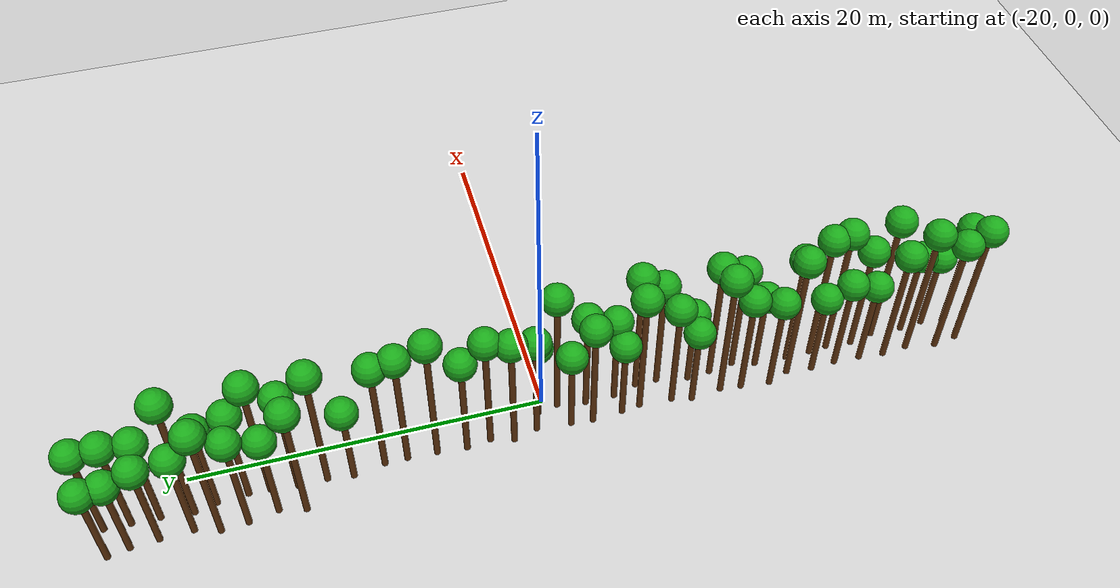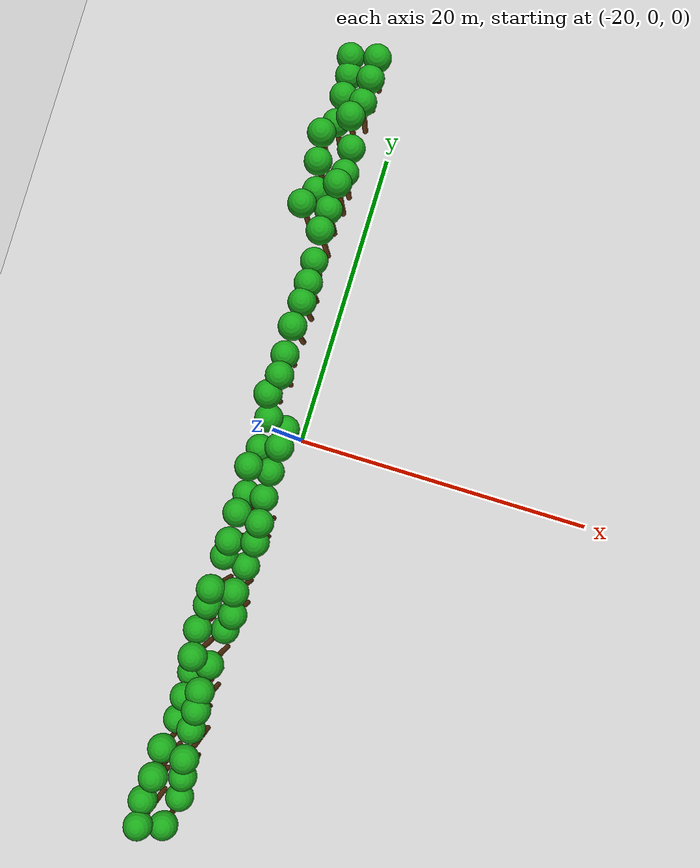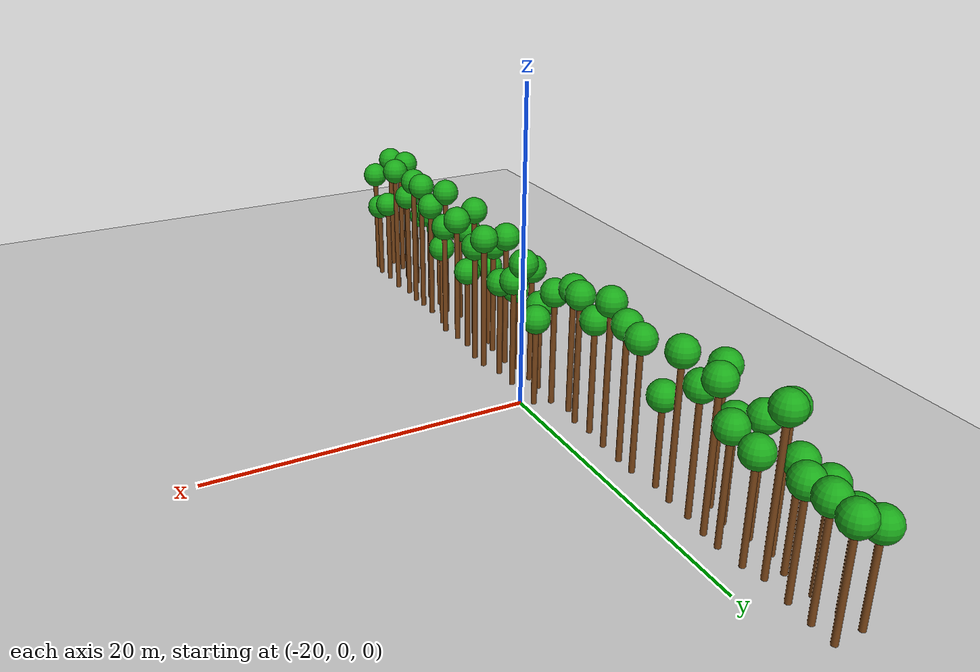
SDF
<sdf version="1.6">
 <world name="forest_world">
  <include><uri>model://sun</uri></include>
  <include><uri>model://ground_plane</uri></include>
  <model name="tree_60">
   <static>true</static>
   <link name="trunk">
    <collision name="collision">
     <pose>-23.60 13.97 3.97 0 0 0</pose>
     <geometry><cylinder><radius>0.18</radius><length>7.95</length></cylinder></geometry>
    </collision>
    <visual name="trunk_visual">
     <pose>-23.60 13.97 3.97 0 0 0</pose>
     <geometry><cylinder><radius>0.18</radius><length>7.95</length></cylinder></geometry>
     <material><ambient>0.35 0.20 0.05 1</ambient><diffuse>0.45 0.25 0.08 1</diffuse></material>
    </visual>
    <visual name="leaf_visual">
     <pose>-23.60 13.97 8.40 0 0 0</pose>
     <geometry><sphere><radius>0.9</radius></sphere></geometry>
     <material><ambient>0.05 0.45 0.05 1</ambient><diffuse>0.10 0.65 0.10 1</diffuse></material>
    </visual>
   </link>
  </model>
  <model name="tree_61">
   <static>true</static>
   <link name="trunk">
    <collision name="collision">
     <pose>-23.26 15.42 2.88 0 0 0</pose>
     <geometry><cylinder><radius>0.18</radius><length>5.77</length></cylinder></geometry>
    </collision>
    <visual name="trunk_visual">
     <pose>-23.26 15.42 2.88 0 0 0</pose>
     <geometry><cylinder><radius>0.18</radius><length>5.77</length></cylinder></geometry>
     <material><ambient>0.35 0.20 0.05 1</ambient><diffuse>0.45 0.25 0.08 1</diffuse></material>
    </visual>
    <visual name="leaf_visual">
     <pose>-23.26 15.42 6.22 0 0 0</pose>
     <geometry><sphere><radius>0.9</radius></sphere></geometry>
     <material><ambient>0.05 0.45 0.05 1</ambient><diffuse>0.10 0.65 0.10 1</diffuse></material>
    </visual>
   </link>
  </model>
  <model name="tree_62">
   <static>true</static>
   <link name="trunk">
    <collision name="collision">
     <pose>-23.58 17.05 3.33 0 0 0</pose>
     <geometry><cylinder><radius>0.18</radius><length>6.66</length></cylinder></geometry>
    </collision>
    <visual name="trunk_visual">
     <pose>-23.58 17.05 3.33 0 0 0</pose>
     <geometry><cylinder><radius>0.18</radius><length>6.66</length></cylinder></geometry>
     <material><ambient>0.35 0.20 0.05 1</ambient><diffuse>0.45 0.25 0.08 1</diffuse></material>
    </visual>
    <visual name="leaf_visual">
     <pose>-23.58 17.05 7.11 0 0 0</pose>
     <geometry><sphere><radius>0.9</radius></sphere></geometry>
     <material><ambient>0.05 0.45 0.05 1</ambient><diffuse>0.10 0.65 0.10 1</diffuse></material>
    </visual>
   </link>
  </model>
  <model name="tree_63">
   <static>true</static>
   <link name="trunk">
    <collision name="collision">
     <pose>-23.72 18.52 3.99 0 0 0</pose>
     <geometry><cylinder><radius>0.18</radius><length>7.97</length></cylinder></geometry>
    </collision>
    <visual name="trunk_visual">
     <pose>-23.72 18.52 3.99 0 0 0</pose>
     <geometry><cylinder><radius>0.18</radius><length>7.97</length></cylinder></geometry>
     <material><ambient>0.35 0.20 0.05 1</ambient><diffuse>0.45 0.25 0.08 1</diffuse></material>
    </visual>
    <visual name="leaf_visual">
     <pose>-23.72 18.52 8.42 0 0 0</pose>
     <geometry><sphere><radius>0.9</radius></sphere></geometry>
     <material><ambient>0.05 0.45 0.05 1</ambient><diffuse>0.10 0.65 0.10 1</diffuse></material>
    </visual>
   </link>
  </model>
  <model name="tree_64">
   <static>true</static>
   <link name="trunk">
    <collision name="collision">
     <pose>-23.30 19.89 2.96 0 0 0</pose>
     <geometry><cylinder><radius>0.18</radius><length>5.91</length></cylinder></geometry>
    </collision>
    <visual name="trunk_visual">
     <pose>-23.30 19.89 2.96 0 0 0</pose>
     <geometry><cylinder><radius>0.18</radius><length>5.91</length></cylinder></geometry>
     <material><ambient>0.35 0.20 0.05 1</ambient><diffuse>0.45 0.25 0.08 1</diffuse></material>
    </visual>
    <visual name="leaf_visual">
     <pose>-23.30 19.89 6.36 0 0 0</pose>
     <geometry><sphere><radius>0.9</radius></sphere></geometry>
     <material><ambient>0.05 0.45 0.05 1</ambient><diffuse>0.10 0.65 0.10 1</diffuse></material>
    </visual>
   </link>
  </model>
  <model name="tree_65">
   <static>true</static>
   <link name="trunk">
    <collision name="collision">
     <pose>-23.37 21.70 2.90 0 0 0</pose>
     <geometry><cylinder><radius>0.18</radius><length>5.79</length></cylinder></geometry>
    </collision>
    <visual name="trunk_visual">
     <pose>-23.37 21.70 2.90 0 0 0</pose>
     <geometry><cylinder><radius>0.18</radius><length>5.79</length></cylinder></geometry>
     <material><ambient>0.35 0.20 0.05 1</ambient><diffuse>0.45 0.25 0.08 1</diffuse></material>
    </visual>
    <visual name="leaf_visual">
     <pose>-23.37 21.70 6.24 0 0 0</pose>
     <geometry><sphere><radius>0.9</radius></sphere></geometry>
     <material><ambient>0.05 0.45 0.05 1</ambient><diffuse>0.10 0.65 0.10 1</diffuse></material>
    </visual>
   </link>
  </model>
  <model name="tree_66">
   <static>true</static>
   <link name="trunk">
    <collision name="collision">
     <pose>-23.48 23.23 2.60 0 0 0</pose>
     <geometry><cylinder><radius>0.18</radius><length>5.20</length></cylinder></geometry>
    </collision>
    <visual name="trunk_visual">
     <pose>-23.48 23.23 2.60 0 0 0</pose>
     <geometry><cylinder><radius>0.18</radius><length>5.20</length></cylinder></geometry>
     <material><ambient>0.35 0.20 0.05 1</ambient><diffuse>0.45 0.25 0.08 1</diffuse></material>
    </visual>
    <visual name="leaf_visual">
     <pose>-23.48 23.23 5.65 0 0 0</pose>
     <geometry><sphere><radius>0.9</radius></sphere></geometry>
     <material><ambient>0.05 0.45 0.05 1</ambient><diffuse>0.10 0.65 0.10 1</diffuse></material>
    </visual>
   </link>
  </model>
  <model name="tree_67">
   <static>true</static>
   <link name="trunk">
    <collision name="collision">
     <pose>-23.72 24.40 2.64 0 0 0</pose>
     <geometry><cylinder><radius>0.18</radius><length>5.28</length></cylinder></geometry>
    </collision>
    <visual name="trunk_visual">
     <pose>-23.72 24.40 2.64 0 0 0</pose>
     <geometry><cylinder><radius>0.18</radius><length>5.28</length></cylinder></geometry>
     <material><ambient>0.35 0.20 0.05 1</ambient><diffuse>0.45 0.25 0.08 1</diffuse></material>
    </visual>
    <visual name="leaf_visual">
     <pose>-23.72 24.40 5.73 0 0 0</pose>
     <geometry><sphere><radius>0.9</radius></sphere></geometry>
     <material><ambient>0.05 0.45 0.05 1</ambient><diffuse>0.10 0.65 0.10 1</diffuse></material>
    </visual>
   </link>
  </model>
  <model name="tree_68">
   <static>true</static>
   <link name="trunk">
    <collision name="collision">
     <pose>-21.97 -25.03 4.19 0 0 0</pose>
     <geometry><cylinder><radius>0.18</radius><length>8.38</length></cylinder></geometry>
    </collision>
    <visual name="trunk_visual">
     <pose>-21.97 -25.03 4.19 0 0 0</pose>
     <geometry><cylinder><radius>0.18</radius><length>8.38</length></cylinder></geometry>
     <material><ambient>0.35 0.20 0.05 1</ambient><diffuse>0.45 0.25 0.08 1</diffuse></material>
    </visual>
    <visual name="leaf_visual">
     <pose>-21.97 -25.03 8.83 0 0 0</pose>
     <geometry><sphere><radius>0.9</radius></sphere></geometry>
     <material><ambient>0.05 0.45 0.05 1</ambient><diffuse>0.10 0.65 0.10 1</diffuse></material>
    </visual>
   </link>
  </model>
  <model name="tree_69">
   <static>true</static>
   <link name="trunk">
    <collision name="collision">
     <pose>-22.20 -23.61 3.97 0 0 0</pose>
     <geometry><cylinder><radius>0.18</radius><length>7.94</length></cylinder></geometry>
    </collision>
    <visual name="trunk_visual">
     <pose>-22.20 -23.61 3.97 0 0 0</pose>
     <geometry><cylinder><radius>0.18</radius><length>7.94</length></cylinder></geometry>
     <material><ambient>0.35 0.20 0.05 1</ambient><diffuse>0.45 0.25 0.08 1</diffuse></material>
    </visual>
    <visual name="leaf_visual">
     <pose>-22.20 -23.61 8.39 0 0 0</pose>
     <geometry><sphere><radius>0.9</radius></sphere></geometry>
     <material><ambient>0.05 0.45 0.05 1</ambient><diffuse>0.10 0.65 0.10 1</diffuse></material>
    </visual>
   </link>
  </model>
  <model name="tree_70">
   <static>true</static>
   <link name="trunk">
    <collision name="collision">
     <pose>-21.89 -21.85 4.45 0 0 0</pose>
     <geometry><cylinder><radius>0.18</radius><length>8.90</length></cylinder></geometry>
    </collision>
    <visual name="trunk_visual">
     <pose>-21.89 -21.85 4.45 0 0 0</pose>
     <geometry><cylinder><radius>0.18</radius><length>8.90</length></cylinder></geometry>
     <material><ambient>0.35 0.20 0.05 1</ambient><diffuse>0.45 0.25 0.08 1</diffuse></material>
    </visual>
    <visual name="leaf_visual">
     <pose>-21.89 -21.85 9.35 0 0 0</pose>
     <geometry><sphere><radius>0.9</radius></sphere></geometry>
     <material><ambient>0.05 0.45 0.05 1</ambient><diffuse>0.10 0.65 0.10 1</diffuse></material>
    </visual>
   </link>
  </model>
  <model name="tree_71">
   <static>true</static>
   <link name="trunk">
    <collision name="collision">
     <pose>-22.01 -20.34 3.89 0 0 0</pose>
     <geometry><cylinder><radius>0.18</radius><length>7.78</length></cylinder></geometry>
    </collision>
    <visual name="trunk_visual">
     <pose>-22.01 -20.34 3.89 0 0 0</pose>
     <geometry><cylinder><radius>0.18</radius><length>7.78</length></cylinder></geometry>
     <material><ambient>0.35 0.20 0.05 1</ambient><diffuse>0.45 0.25 0.08 1</diffuse></material>
    </visual>
    <visual name="leaf_visual">
     <pose>-22.01 -20.34 8.23 0 0 0</pose>
     <geometry><sphere><radius>0.9</radius></sphere></geometry>
     <material><ambient>0.05 0.45 0.05 1</ambient><diffuse>0.10 0.65 0.10 1</diffuse></material>
    </visual>
   </link>
  </model>
  <model name="tree_72">
   <static>true</static>
   <link name="trunk">
    <collision name="collision">
     <pose>-21.87 -18.87 2.82 0 0 0</pose>
     <geometry><cylinder><radius>0.18</radius><length>5.64</length></cylinder></geometry>
    </collision>
    <visual name="trunk_visual">
     <pose>-21.87 -18.87 2.82 0 0 0</pose>
     <geometry><cylinder><radius>0.18</radius><length>5.64</length></cylinder></geometry>
     <material><ambient>0.35 0.20 0.05 1</ambient><diffuse>0.45 0.25 0.08 1</diffuse></material>
    </visual>
    <visual name="leaf_visual">
     <pose>-21.87 -18.87 6.09 0 0 0</pose>
     <geometry><sphere><radius>0.9</radius></sphere></geometry>
     <material><ambient>0.05 0.45 0.05 1</ambient><diffuse>0.10 0.65 0.10 1</diffuse></material>
    </visual>
   </link>
  </model>
  <model name="tree_73">
   <static>true</static>
   <link name="trunk">
    <collision name="collision">
     <pose>-21.82 -17.32 3.09 0 0 0</pose>
     <geometry><cylinder><radius>0.18</radius><length>6.18</length></cylinder></geometry>
    </collision>
    <visual name="trunk_visual">
     <pose>-21.82 -17.32 3.09 0 0 0</pose>
     <geometry><cylinder><radius>0.18</radius><length>6.18</length></cylinder></geometry>
     <material><ambient>0.35 0.20 0.05 1</ambient><diffuse>0.45 0.25 0.08 1</diffuse></material>
    </visual>
    <visual name="leaf_visual">
     <pose>-21.82 -17.32 6.63 0 0 0</pose>
     <geometry><sphere><radius>0.9</radius></sphere></geometry>
     <material><ambient>0.05 0.45 0.05 1</ambient><diffuse>0.10 0.65 0.10 1</diffuse></material>
    </visual>
   </link>
  </model>
  <model name="tree_74">
   <static>true</static>
   <link name="trunk">
    <collision name="collision">
     <pose>-21.90 -15.84 2.80 0 0 0</pose>
     <geometry><cylinder><radius>0.18</radius><length>5.59</length></cylinder></geometry>
    </collision>
    <visual name="trunk_visual">
     <pose>-21.90 -15.84 2.80 0 0 0</pose>
     <geometry><cylinder><radius>0.18</radius><length>5.59</length></cylinder></geometry>
     <material><ambient>0.35 0.20 0.05 1</ambient><diffuse>0.45 0.25 0.08 1</diffuse></material>
    </visual>
    <visual name="leaf_visual">
     <pose>-21.90 -15.84 6.04 0 0 0</pose>
     <geometry><sphere><radius>0.9</radius></sphere></geometry>
     <material><ambient>0.05 0.45 0.05 1</ambient><diffuse>0.10 0.65 0.10 1</diffuse></material>
    </visual>
   </link>
  </model>
  <model name="tree_75">
   <static>true</static>
   <link name="trunk">
    <collision name="collision">
     <pose>-21.75 -14.34 4.40 0 0 0</pose>
     <geometry><cylinder><radius>0.18</radius><length>8.80</length></cylinder></geometry>
    </collision>
    <visual name="trunk_visual">
     <pose>-21.75 -14.34 4.40 0 0 0</pose>
     <geometry><cylinder><radius>0.18</radius><length>8.80</length></cylinder></geometry>
     <material><ambient>0.35 0.20 0.05 1</ambient><diffuse>0.45 0.25 0.08 1</diffuse></material>
    </visual>
    <visual name="leaf_visual">
     <pose>-21.75 -14.34 9.25 0 0 0</pose>
     <geometry><sphere><radius>0.9</radius></sphere></geometry>
     <material><ambient>0.05 0.45 0.05 1</ambient><diffuse>0.10 0.65 0.10 1</diffuse></material>
    </visual>
   </link>
  </model>
  <model name="tree_76">
   <static>true</static>
   <link name="trunk">
    <collision name="collision">
     <pose>-22.23 -13.07 3.21 0 0 0</pose>
     <geometry><cylinder><radius>0.18</radius><length>6.41</length></cylinder></geometry>
    </collision>
    <visual name="trunk_visual">
     <pose>-22.23 -13.07 3.21 0 0 0</pose>
     <geometry><cylinder><radius>0.18</radius><length>6.41</length></cylinder></geometry>
     <material><ambient>0.35 0.20 0.05 1</ambient><diffuse>0.45 0.25 0.08 1</diffuse></material>
    </visual>
    <visual name="leaf_visual">
     <pose>-22.23 -13.07 6.86 0 0 0</pose>
     <geometry><sphere><radius>0.9</radius></sphere></geometry>
     <material><ambient>0.05 0.45 0.05 1</ambient><diffuse>0.10 0.65 0.10 1</diffuse></material>
    </visual>
   </link>
  </model>
  <model name="tree_77">
   <static>true</static>
   <link name="trunk">
    <collision name="collision">
     <pose>-22.03 -11.39 3.45 0 0 0</pose>
     <geometry><cylinder><radius>0.18</radius><length>6.89</length></cylinder></geometry>
    </collision>
    <visual name="trunk_visual">
     <pose>-22.03 -11.39 3.45 0 0 0</pose>
     <geometry><cylinder><radius>0.18</radius><length>6.89</length></cylinder></geometry>
     <material><ambient>0.35 0.20 0.05 1</ambient><diffuse>0.45 0.25 0.08 1</diffuse></material>
    </visual>
    <visual name="leaf_visual">
     <pose>-22.03 -11.39 7.34 0 0 0</pose>
     <geometry><sphere><radius>0.9</radius></sphere></geometry>
     <material><ambient>0.05 0.45 0.05 1</ambient><diffuse>0.10 0.65 0.10 1</diffuse></material>
    </visual>
   </link>
  </model>
  <model name="tree_78">
   <static>true</static>
   <link name="trunk">
    <collision name="collision">
     <pose>-21.91 -10.16 4.37 0 0 0</pose>
     <geometry><cylinder><radius>0.18</radius><length>8.73</length></cylinder></geometry>
    </collision>
    <visual name="trunk_visual">
     <pose>-21.91 -10.16 4.37 0 0 0</pose>
     <geometry><cylinder><radius>0.18</radius><length>8.73</length></cylinder></geometry>
     <material><ambient>0.35 0.20 0.05 1</ambient><diffuse>0.45 0.25 0.08 1</diffuse></material>
    </visual>
    <visual name="leaf_visual">
     <pose>-21.91 -10.16 9.18 0 0 0</pose>
     <geometry><sphere><radius>0.9</radius></sphere></geometry>
     <material><ambient>0.05 0.45 0.05 1</ambient><diffuse>0.10 0.65 0.10 1</diffuse></material>
    </visual>
   </link>
  </model>
  <model name="tree_79">
   <static>true</static>
   <link name="trunk">
    <collision name="collision">
     <pose>-22.11 -8.36 2.65 0 0 0</pose>
     <geometry><cylinder><radius>0.18</radius><length>5.31</length></cylinder></geometry>
    </collision>
    <visual name="trunk_visual">
     <pose>-22.11 -8.36 2.65 0 0 0</pose>
     <geometry><cylinder><radius>0.18</radius><length>5.31</length></cylinder></geometry>
     <material><ambient>0.35 0.20 0.05 1</ambient><diffuse>0.45 0.25 0.08 1</diffuse></material>
    </visual>
    <visual name="leaf_visual">
     <pose>-22.11 -8.36 5.76 0 0 0</pose>
     <geometry><sphere><radius>0.9</radius></sphere></geometry>
     <material><ambient>0.05 0.45 0.05 1</ambient><diffuse>0.10 0.65 0.10 1</diffuse></material>
    </visual>
   </link>
  </model>
  <model name="tree_80">
   <static>true</static>
   <link name="trunk">
    <collision name="collision">
     <pose>-21.85 -7.22 3.62 0 0 0</pose>
     <geometry><cylinder><radius>0.18</radius><length>7.23</length></cylinder></geometry>
    </collision>
    <visual name="trunk_visual">
     <pose>-21.85 -7.22 3.62 0 0 0</pose>
     <geometry><cylinder><radius>0.18</radius><length>7.23</length></cylinder></geometry>
     <material><ambient>0.35 0.20 0.05 1</ambient><diffuse>0.45 0.25 0.08 1</diffuse></material>
    </visual>
    <visual name="leaf_visual">
     <pose>-21.85 -7.22 7.68 0 0 0</pose>
     <geometry><sphere><radius>0.9</radius></sphere></geometry>
     <material><ambient>0.05 0.45 0.05 1</ambient><diffuse>0.10 0.65 0.10 1</diffuse></material>
    </visual>
   </link>
  </model>
  <model name="tree_81">
   <static>true</static>
   <link name="trunk">
    <collision name="collision">
     <pose>-21.76 -5.32 4.25 0 0 0</pose>
     <geometry><cylinder><radius>0.18</radius><length>8.49</length></cylinder></geometry>
    </collision>
    <visual name="trunk_visual">
     <pose>-21.76 -5.32 4.25 0 0 0</pose>
     <geometry><cylinder><radius>0.18</radius><length>8.49</length></cylinder></geometry>
     <material><ambient>0.35 0.20 0.05 1</ambient><diffuse>0.45 0.25 0.08 1</diffuse></material>
    </visual>
    <visual name="leaf_visual">
     <pose>-21.76 -5.32 8.94 0 0 0</pose>
     <geometry><sphere><radius>0.9</radius></sphere></geometry>
     <material><ambient>0.05 0.45 0.05 1</ambient><diffuse>0.10 0.65 0.10 1</diffuse></material>
    </visual>
   </link>
  </model>
  <model name="tree_82">
   <static>true</static>
   <link name="trunk">
    <collision name="collision">
     <pose>-21.91 -4.23 2.63 0 0 0</pose>
     <geometry><cylinder><radius>0.18</radius><length>5.27</length></cylinder></geometry>
    </collision>
    <visual name="trunk_visual">
     <pose>-21.91 -4.23 2.63 0 0 0</pose>
     <geometry><cylinder><radius>0.18</radius><length>5.27</length></cylinder></geometry>
     <material><ambient>0.35 0.20 0.05 1</ambient><diffuse>0.45 0.25 0.08 1</diffuse></material>
    </visual>
    <visual name="leaf_visual">
     <pose>-21.91 -4.23 5.72 0 0 0</pose>
     <geometry><sphere><radius>0.9</radius></sphere></geometry>
     <material><ambient>0.05 0.45 0.05 1</ambient><diffuse>0.10 0.65 0.10 1</diffuse></material>
    </visual>
   </link>
  </model>
  <model name="tree_83">
   <static>true</static>
   <link name="trunk">
    <collision name="collision">
     <pose>-22.05 -2.47 3.64 0 0 0</pose>
     <geometry><cylinder><radius>0.18</radius><length>7.29</length></cylinder></geometry>
    </collision>
    <visual name="trunk_visual">
     <pose>-22.05 -2.47 3.64 0 0 0</pose>
     <geometry><cylinder><radius>0.18</radius><length>7.29</length></cylinder></geometry>
     <material><ambient>0.35 0.20 0.05 1</ambient><diffuse>0.45 0.25 0.08 1</diffuse></material>
    </visual>
    <visual name="leaf_visual">
     <pose>-22.05 -2.47 7.74 0 0 0</pose>
     <geometry><sphere><radius>0.9</radius></sphere></geometry>
     <material><ambient>0.05 0.45 0.05 1</ambient><diffuse>0.10 0.65 0.10 1</diffuse></material>
    </visual>
   </link>
  </model>
  <model name="tree_84">
   <static>true</static>
   <link name="trunk">
    <collision name="collision">
     <pose>-21.94 -1.22 2.67 0 0 0</pose>
     <geometry><cylinder><radius>0.18</radius><length>5.34</length></cylinder></geometry>
    </collision>
    <visual name="trunk_visual">
     <pose>-21.94 -1.22 2.67 0 0 0</pose>
     <geometry><cylinder><radius>0.18</radius><length>5.34</length></cylinder></geometry>
     <material><ambient>0.35 0.20 0.05 1</ambient><diffuse>0.45 0.25 0.08 1</diffuse></material>
    </visual>
    <visual name="leaf_visual">
     <pose>-21.94 -1.22 5.79 0 0 0</pose>
     <geometry><sphere><radius>0.9</radius></sphere></geometry>
     <material><ambient>0.05 0.45 0.05 1</ambient><diffuse>0.10 0.65 0.10 1</diffuse></material>
    </visual>
   </link>
  </model>
  <model name="tree_85">
   <static>true</static>
   <link name="trunk">
    <collision name="collision">
     <pose>-21.78 0.74 3.49 0 0 0</pose>
     <geometry><cylinder><radius>0.18</radius><length>6.99</length></cylinder></geometry>
    </collision>
    <visual name="trunk_visual">
     <pose>-21.78 0.74 3.49 0 0 0</pose>
     <geometry><cylinder><radius>0.18</radius><length>6.99</length></cylinder></geometry>
     <material><ambient>0.35 0.20 0.05 1</ambient><diffuse>0.45 0.25 0.08 1</diffuse></material>
    </visual>
    <visual name="leaf_visual">
     <pose>-21.78 0.74 7.44 0 0 0</pose>
     <geometry><sphere><radius>0.9</radius></sphere></geometry>
     <material><ambient>0.05 0.45 0.05 1</ambient><diffuse>0.10 0.65 0.10 1</diffuse></material>
    </visual>
   </link>
  </model>
  <model name="tree_86">
   <static>true</static>
   <link name="trunk">
    <collision name="collision">
     <pose>-22.18 2.14 3.86 0 0 0</pose>
     <geometry><cylinder><radius>0.18</radius><length>7.72</length></cylinder></geometry>
    </collision>
    <visual name="trunk_visual">
     <pose>-22.18 2.14 3.86 0 0 0</pose>
     <geometry><cylinder><radius>0.18</radius><length>7.72</length></cylinder></geometry>
     <material><ambient>0.35 0.20 0.05 1</ambient><diffuse>0.45 0.25 0.08 1</diffuse></material>
    </visual>
    <visual name="leaf_visual">
     <pose>-22.18 2.14 8.17 0 0 0</pose>
     <geometry><sphere><radius>0.9</radius></sphere></geometry>
     <material><ambient>0.05 0.45 0.05 1</ambient><diffuse>0.10 0.65 0.10 1</diffuse></material>
    </visual>
   </link>
  </model>
  <model name="tree_87">
   <static>true</static>
   <link name="trunk">
    <collision name="collision">
     <pose>-21.82 3.43 3.94 0 0 0</pose>
     <geometry><cylinder><radius>0.18</radius><length>7.87</length></cylinder></geometry>
    </collision>
    <visual name="trunk_visual">
     <pose>-21.82 3.43 3.94 0 0 0</pose>
     <geometry><cylinder><radius>0.18</radius><length>7.87</length></cylinder></geometry>
     <material><ambient>0.35 0.20 0.05 1</ambient><diffuse>0.45 0.25 0.08 1</diffuse></material>
    </visual>
    <visual name="leaf_visual">
     <pose>-21.82 3.43 8.32 0 0 0</pose>
     <geometry><sphere><radius>0.9</radius></sphere></geometry>
     <material><ambient>0.05 0.45 0.05 1</ambient><diffuse>0.10 0.65 0.10 1</diffuse></material>
    </visual>
   </link>
  </model>
  <model name="tree_88">
   <static>true</static>
   <link name="trunk">
    <collision name="collision">
     <pose>-21.99 4.80 3.42 0 0 0</pose>
     <geometry><cylinder><radius>0.18</radius><length>6.84</length></cylinder></geometry>
    </collision>
    <visual name="trunk_visual">
     <pose>-21.99 4.80 3.42 0 0 0</pose>
     <geometry><cylinder><radius>0.18</radius><length>6.84</length></cylinder></geometry>
     <material><ambient>0.35 0.20 0.05 1</ambient><diffuse>0.45 0.25 0.08 1</diffuse></material>
    </visual>
    <visual name="leaf_visual">
     <pose>-21.99 4.80 7.29 0 0 0</pose>
     <geometry><sphere><radius>0.9</radius></sphere></geometry>
     <material><ambient>0.05 0.45 0.05 1</ambient><diffuse>0.10 0.65 0.10 1</diffuse></material>
    </visual>
   </link>
  </model>
  <model name="tree_89">
   <static>true</static>
   <link name="trunk">
    <collision name="collision">
     <pose>-21.85 6.47 4.35 0 0 0</pose>
     <geometry><cylinder><radius>0.18</radius><length>8.70</length></cylinder></geometry>
    </collision>
    <visual name="trunk_visual">
     <pose>-21.85 6.47 4.35 0 0 0</pose>
     <geometry><cylinder><radius>0.18</radius><length>8.70</length></cylinder></geometry>
     <material><ambient>0.35 0.20 0.05 1</ambient><diffuse>0.45 0.25 0.08 1</diffuse></material>
    </visual>
    <visual name="leaf_visual">
     <pose>-21.85 6.47 9.15 0 0 0</pose>
     <geometry><sphere><radius>0.9</radius></sphere></geometry>
     <material><ambient>0.05 0.45 0.05 1</ambient><diffuse>0.10 0.65 0.10 1</diffuse></material>
    </visual>
   </link>
  </model>
  <model name="tree_90">
   <static>true</static>
   <link name="trunk">
    <collision name="collision">
     <pose>-21.80 8.13 4.01 0 0 0</pose>
     <geometry><cylinder><radius>0.18</radius><length>8.01</length></cylinder></geometry>
    </collision>
    <visual name="trunk_visual">
     <pose>-21.80 8.13 4.01 0 0 0</pose>
     <geometry><cylinder><radius>0.18</radius><length>8.01</length></cylinder></geometry>
     <material><ambient>0.35 0.20 0.05 1</ambient><diffuse>0.45 0.25 0.08 1</diffuse></material>
    </visual>
    <visual name="leaf_visual">
     <pose>-21.80 8.13 8.46 0 0 0</pose>
     <geometry><sphere><radius>0.9</radius></sphere></geometry>
     <material><ambient>0.05 0.45 0.05 1</ambient><diffuse>0.10 0.65 0.10 1</diffuse></material>
    </visual>
   </link>
  </model>
  <model name="tree_91">
   <static>true</static>
   <link name="trunk">
    <collision name="collision">
     <pose>-21.81 9.40 3.87 0 0 0</pose>
     <geometry><cylinder><radius>0.18</radius><length>7.75</length></cylinder></geometry>
    </collision>
    <visual name="trunk_visual">
     <pose>-21.81 9.40 3.87 0 0 0</pose>
     <geometry><cylinder><radius>0.18</radius><length>7.75</length></cylinder></geometry>
     <material><ambient>0.35 0.20 0.05 1</ambient><diffuse>0.45 0.25 0.08 1</diffuse></material>
    </visual>
    <visual name="leaf_visual">
     <pose>-21.81 9.40 8.20 0 0 0</pose>
     <geometry><sphere><radius>0.9</radius></sphere></geometry>
     <material><ambient>0.05 0.45 0.05 1</ambient><diffuse>0.10 0.65 0.10 1</diffuse></material>
    </visual>
   </link>
  </model>
  <model name="tree_92">
   <static>true</static>
   <link name="trunk">
    <collision name="collision">
     <pose>-22.14 11.17 2.58 0 0 0</pose>
     <geometry><cylinder><radius>0.18</radius><length>5.17</length></cylinder></geometry>
    </collision>
    <visual name="trunk_visual">
     <pose>-22.14 11.17 2.58 0 0 0</pose>
     <geometry><cylinder><radius>0.18</radius><length>5.17</length></cylinder></geometry>
     <material><ambient>0.35 0.20 0.05 1</ambient><diffuse>0.45 0.25 0.08 1</diffuse></material>
    </visual>
    <visual name="leaf_visual">
     <pose>-22.14 11.17 5.62 0 0 0</pose>
     <geometry><sphere><radius>0.9</radius></sphere></geometry>
     <material><ambient>0.05 0.45 0.05 1</ambient><diffuse>0.10 0.65 0.10 1</diffuse></material>
    </visual>
   </link>
  </model>
  <model name="tree_93">
   <static>true</static>
   <link name="trunk">
    <collision name="collision">
     <pose>-21.97 12.60 4.22 0 0 0</pose>
     <geometry><cylinder><radius>0.18</radius><length>8.44</length></cylinder></geometry>
    </collision>
    <visual name="trunk_visual">
     <pose>-21.97 12.60 4.22 0 0 0</pose>
     <geometry><cylinder><radius>0.18</radius><length>8.44</length></cylinder></geometry>
     <material><ambient>0.35 0.20 0.05 1</ambient><diffuse>0.45 0.25 0.08 1</diffuse></material>
    </visual>
    <visual name="leaf_visual">
     <pose>-21.97 12.60 8.89 0 0 0</pose>
     <geometry><sphere><radius>0.9</radius></sphere></geometry>
     <material><ambient>0.05 0.45 0.05 1</ambient><diffuse>0.10 0.65 0.10 1</diffuse></material>
    </visual>
   </link>
  </model>
  <model name="tree_94">
   <static>true</static>
   <link name="trunk">
    <collision name="collision">
     <pose>-21.99 14.19 3.64 0 0 0</pose>
     <geometry><cylinder><radius>0.18</radius><length>7.29</length></cylinder></geometry>
    </collision>
    <visual name="trunk_visual">
     <pose>-21.99 14.19 3.64 0 0 0</pose>
     <geometry><cylinder><radius>0.18</radius><length>7.29</length></cylinder></geometry>
     <material><ambient>0.35 0.20 0.05 1</ambient><diffuse>0.45 0.25 0.08 1</diffuse></material>
    </visual>
    <visual name="leaf_visual">
     <pose>-21.99 14.19 7.74 0 0 0</pose>
     <geometry><sphere><radius>0.9</radius></sphere></geometry>
     <material><ambient>0.05 0.45 0.05 1</ambient><diffuse>0.10 0.65 0.10 1</diffuse></material>
    </visual>
   </link>
  </model>
  <model name="tree_95">
   <static>true</static>
   <link name="trunk">
    <collision name="collision">
     <pose>-21.81 15.68 4.21 0 0 0</pose>
     <geometry><cylinder><radius>0.18</radius><length>8.43</length></cylinder></geometry>
    </collision>
    <visual name="trunk_visual">
     <pose>-21.81 15.68 4.21 0 0 0</pose>
     <geometry><cylinder><radius>0.18</radius><length>8.43</length></cylinder></geometry>
     <material><ambient>0.35 0.20 0.05 1</ambient><diffuse>0.45 0.25 0.08 1</diffuse></material>
    </visual>
    <visual name="leaf_visual">
     <pose>-21.81 15.68 8.88 0 0 0</pose>
     <geometry><sphere><radius>0.9</radius></sphere></geometry>
     <material><ambient>0.05 0.45 0.05 1</ambient><diffuse>0.10 0.65 0.10 1</diffuse></material>
    </visual>
   </link>
  </model>
  <model name="tree_96">
   <static>true</static>
   <link name="trunk">
    <collision name="collision">
     <pose>-21.77 16.85 3.23 0 0 0</pose>
     <geometry><cylinder><radius>0.18</radius><length>6.47</length></cylinder></geometry>
    </collision>
    <visual name="trunk_visual">
     <pose>-21.77 16.85 3.23 0 0 0</pose>
     <geometry><cylinder><radius>0.18</radius><length>6.47</length></cylinder></geometry>
     <material><ambient>0.35 0.20 0.05 1</ambient><diffuse>0.45 0.25 0.08 1</diffuse></material>
    </visual>
    <visual name="leaf_visual">
     <pose>-21.77 16.85 6.92 0 0 0</pose>
     <geometry><sphere><radius>0.9</radius></sphere></geometry>
     <material><ambient>0.05 0.45 0.05 1</ambient><diffuse>0.10 0.65 0.10 1</diffuse></material>
    </visual>
   </link>
  </model>
  <model name="tree_97">
   <static>true</static>
   <link name="trunk">
    <collision name="collision">
     <pose>-21.89 18.55 3.01 0 0 0</pose>
     <geometry><cylinder><radius>0.18</radius><length>6.03</length></cylinder></geometry>
    </collision>
    <visual name="trunk_visual">
     <pose>-21.89 18.55 3.01 0 0 0</pose>
     <geometry><cylinder><radius>0.18</radius><length>6.03</length></cylinder></geometry>
     <material><ambient>0.35 0.20 0.05 1</ambient><diffuse>0.45 0.25 0.08 1</diffuse></material>
    </visual>
    <visual name="leaf_visual">
     <pose>-21.89 18.55 6.48 0 0 0</pose>
     <geometry><sphere><radius>0.9</radius></sphere></geometry>
     <material><ambient>0.05 0.45 0.05 1</ambient><diffuse>0.10 0.65 0.10 1</diffuse></material>
    </visual>
   </link>
  </model>
  <model name="tree_98">
   <static>true</static>
   <link name="trunk">
    <collision name="collision">
     <pose>-22.19 19.76 4.46 0 0 0</pose>
     <geometry><cylinder><radius>0.18</radius><length>8.92</length></cylinder></geometry>
    </collision>
    <visual name="trunk_visual">
     <pose>-22.19 19.76 4.46 0 0 0</pose>
     <geometry><cylinder><radius>0.18</radius><length>8.92</length></cylinder></geometry>
     <material><ambient>0.35 0.20 0.05 1</ambient><diffuse>0.45 0.25 0.08 1</diffuse></material>
    </visual>
    <visual name="leaf_visual">
     <pose>-22.19 19.76 9.37 0 0 0</pose>
     <geometry><sphere><radius>0.9</radius></sphere></geometry>
     <material><ambient>0.05 0.45 0.05 1</ambient><diffuse>0.10 0.65 0.10 1</diffuse></material>
    </visual>
   </link>
  </model>
  <model name="tree_99">
   <static>true</static>
   <link name="trunk">
    <collision name="collision">
     <pose>-22.03 21.54 3.12 0 0 0</pose>
     <geometry><cylinder><radius>0.18</radius><length>6.23</length></cylinder></geometry>
    </collision>
    <visual name="trunk_visual">
     <pose>-22.03 21.54 3.12 0 0 0</pose>
     <geometry><cylinder><radius>0.18</radius><length>6.23</length></cylinder></geometry>
     <material><ambient>0.35 0.20 0.05 1</ambient><diffuse>0.45 0.25 0.08 1</diffuse></material>
    </visual>
    <visual name="leaf_visual">
     <pose>-22.03 21.54 6.68 0 0 0</pose>
     <geometry><sphere><radius>0.9</radius></sphere></geometry>
     <material><ambient>0.05 0.45 0.05 1</ambient><diffuse>0.10 0.65 0.10 1</diffuse></material>
    </visual>
   </link>
  </model>
  <model name="tree_100">
   <static>true</static>
   <link name="trunk">
    <collision name="collision">
     <pose>-21.98 23.07 3.17 0 0 0</pose>
     <geometry><cylinder><radius>0.18</radius><length>6.35</length></cylinder></geometry>
    </collision>
    <visual name="trunk_visual">
     <pose>-21.98 23.07 3.17 0 0 0</pose>
     <geometry><cylinder><radius>0.18</radius><length>6.35</length></cylinder></geometry>
     <material><ambient>0.35 0.20 0.05 1</ambient><diffuse>0.45 0.25 0.08 1</diffuse></material>
    </visual>
    <visual name="leaf_visual">
     <pose>-21.98 23.07 6.80 0 0 0</pose>
     <geometry><sphere><radius>0.9</radius></sphere></geometry>
     <material><ambient>0.05 0.45 0.05 1</ambient><diffuse>0.10 0.65 0.10 1</diffuse></material>
    </visual>
   </link>
  </model>
  <model name="tree_101">
   <static>true</static>
   <link name="trunk">
    <collision name="collision">
     <pose>-21.96 24.50 3.11 0 0 0</pose>
     <geometry><cylinder><radius>0.18</radius><length>6.22</length></cylinder></geometry>
    </collision>
    <visual name="trunk_visual">
     <pose>-21.96 24.50 3.11 0 0 0</pose>
     <geometry><cylinder><radius>0.18</radius><length>6.22</length></cylinder></geometry>
     <material><ambient>0.35 0.20 0.05 1</ambient><diffuse>0.45 0.25 0.08 1</diffuse></material>
    </visual>
    <visual name="leaf_visual">
     <pose>-21.96 24.50 6.67 0 0 0</pose>
     <geometry><sphere><radius>0.9</radius></sphere></geometry>
     <material><ambient>0.05 0.45 0.05 1</ambient><diffuse>0.10 0.65 0.10 1</diffuse></material>
    </visual>
   </link>
  </model>
  <model name="tree_102">
   <static>true</static>
   <link name="trunk">
    <collision name="collision">
     <pose>-20.60 -24.91 3.67 0 0 0</pose>
     <geometry><cylinder><radius>0.18</radius><length>7.34</length></cylinder></geometry>
    </collision>
    <visual name="trunk_visual">
     <pose>-20.60 -24.91 3.67 0 0 0</pose>
     <geometry><cylinder><radius>0.18</radius><length>7.34</length></cylinder></geometry>
     <material><ambient>0.35 0.20 0.05 1</ambient><diffuse>0.45 0.25 0.08 1</diffuse></material>
    </visual>
    <visual name="leaf_visual">
     <pose>-20.60 -24.91 7.79 0 0 0</pose>
     <geometry><sphere><radius>0.9</radius></sphere></geometry>
     <material><ambient>0.05 0.45 0.05 1</ambient><diffuse>0.10 0.65 0.10 1</diffuse></material>
    </visual>
   </link>
  </model>
  <model name="tree_103">
   <static>true</static>
   <link name="trunk">
    <collision name="collision">
     <pose>-20.36 -23.62 2.56 0 0 0</pose>
     <geometry><cylinder><radius>0.18</radius><length>5.12</length></cylinder></geometry>
    </collision>
    <visual name="trunk_visual">
     <pose>-20.36 -23.62 2.56 0 0 0</pose>
     <geometry><cylinder><radius>0.18</radius><length>5.12</length></cylinder></geometry>
     <material><ambient>0.35 0.20 0.05 1</ambient><diffuse>0.45 0.25 0.08 1</diffuse></material>
    </visual>
    <visual name="leaf_visual">
     <pose>-20.36 -23.62 5.57 0 0 0</pose>
     <geometry><sphere><radius>0.9</radius></sphere></geometry>
     <material><ambient>0.05 0.45 0.05 1</ambient><diffuse>0.10 0.65 0.10 1</diffuse></material>
    </visual>
   </link>
  </model>
  <model name="tree_104">
   <static>true</static>
   <link name="trunk">
    <collision name="collision">
     <pose>-20.49 -22.21 2.85 0 0 0</pose>
     <geometry><cylinder><radius>0.18</radius><length>5.71</length></cylinder></geometry>
    </collision>
    <visual name="trunk_visual">
     <pose>-20.49 -22.21 2.85 0 0 0</pose>
     <geometry><cylinder><radius>0.18</radius><length>5.71</length></cylinder></geometry>
     <material><ambient>0.35 0.20 0.05 1</ambient><diffuse>0.45 0.25 0.08 1</diffuse></material>
    </visual>
    <visual name="leaf_visual">
     <pose>-20.49 -22.21 6.16 0 0 0</pose>
     <geometry><sphere><radius>0.9</radius></sphere></geometry>
     <material><ambient>0.05 0.45 0.05 1</ambient><diffuse>0.10 0.65 0.10 1</diffuse></material>
    </visual>
   </link>
  </model>
  <model name="tree_105">
   <static>true</static>
   <link name="trunk">
    <collision name="collision">
     <pose>-20.41 -20.29 4.46 0 0 0</pose>
     <geometry><cylinder><radius>0.18</radius><length>8.92</length></cylinder></geometry>
    </collision>
    <visual name="trunk_visual">
     <pose>-20.41 -20.29 4.46 0 0 0</pose>
     <geometry><cylinder><radius>0.18</radius><length>8.92</length></cylinder></geometry>
     <material><ambient>0.35 0.20 0.05 1</ambient><diffuse>0.45 0.25 0.08 1</diffuse></material>
    </visual>
    <visual name="leaf_visual">
     <pose>-20.41 -20.29 9.37 0 0 0</pose>
     <geometry><sphere><radius>0.9</radius></sphere></geometry>
     <material><ambient>0.05 0.45 0.05 1</ambient><diffuse>0.10 0.65 0.10 1</diffuse></material>
    </visual>
   </link>
  </model>
  <model name="tree_106">
   <static>true</static>
   <link name="trunk">
    <collision name="collision">
     <pose>-20.71 -18.86 3.64 0 0 0</pose>
     <geometry><cylinder><radius>0.18</radius><length>7.29</length></cylinder></geometry>
    </collision>
    <visual name="trunk_visual">
     <pose>-20.71 -18.86 3.64 0 0 0</pose>
     <geometry><cylinder><radius>0.18</radius><length>7.29</length></cylinder></geometry>
     <material><ambient>0.35 0.20 0.05 1</ambient><diffuse>0.45 0.25 0.08 1</diffuse></material>
    </visual>
    <visual name="leaf_visual">
     <pose>-20.71 -18.86 7.74 0 0 0</pose>
     <geometry><sphere><radius>0.9</radius></sphere></geometry>
     <material><ambient>0.05 0.45 0.05 1</ambient><diffuse>0.10 0.65 0.10 1</diffuse></material>
    </visual>
   </link>
  </model>
  <model name="tree_107">
   <static>true</static>
   <link name="trunk">
    <collision name="collision">
     <pose>-20.59 -17.32 4.47 0 0 0</pose>
     <geometry><cylinder><radius>0.18</radius><length>8.94</length></cylinder></geometry>
    </collision>
    <visual name="trunk_visual">
     <pose>-20.59 -17.32 4.47 0 0 0</pose>
     <geometry><cylinder><radius>0.18</radius><length>8.94</length></cylinder></geometry>
     <material><ambient>0.35 0.20 0.05 1</ambient><diffuse>0.45 0.25 0.08 1</diffuse></material>
    </visual>
    <visual name="leaf_visual">
     <pose>-20.59 -17.32 9.39 0 0 0</pose>
     <geometry><sphere><radius>0.9</radius></sphere></geometry>
     <material><ambient>0.05 0.45 0.05 1</ambient><diffuse>0.10 0.65 0.10 1</diffuse></material>
    </visual>
   </link>
  </model>
  <model name="tree_108">
   <static>true</static>
   <link name="trunk">
    <collision name="collision">
     <pose>-20.71 -16.21 4.43 0 0 0</pose>
     <geometry><cylinder><radius>0.18</radius><length>8.87</length></cylinder></geometry>
    </collision>
    <visual name="trunk_visual">
     <pose>-20.71 -16.21 4.43 0 0 0</pose>
     <geometry><cylinder><radius>0.18</radius><length>8.87</length></cylinder></geometry>
     <material><ambient>0.35 0.20 0.05 1</ambient><diffuse>0.45 0.25 0.08 1</diffuse></material>
    </visual>
    <visual name="leaf_visual">
     <pose>-20.71 -16.21 9.32 0 0 0</pose>
     <geometry><sphere><radius>0.9</radius></sphere></geometry>
     <material><ambient>0.05 0.45 0.05 1</ambient><diffuse>0.10 0.65 0.10 1</diffuse></material>
    </visual>
   </link>
  </model>
  <model name="tree_109">
   <static>true</static>
   <link name="trunk">
    <collision name="collision">
     <pose>-20.74 -14.72 3.91 0 0 0</pose>
     <geometry><cylinder><radius>0.18</radius><length>7.83</length></cylinder></geometry>
    </collision>
    <visual name="trunk_visual">
     <pose>-20.74 -14.72 3.91 0 0 0</pose>
     <geometry><cylinder><radius>0.18</radius><length>7.83</length></cylinder></geometry>
     <material><ambient>0.35 0.20 0.05 1</ambient><diffuse>0.45 0.25 0.08 1</diffuse></material>
    </visual>
    <visual name="leaf_visual">
     <pose>-20.74 -14.72 8.28 0 0 0</pose>
     <geometry><sphere><radius>0.9</radius></sphere></geometry>
     <material><ambient>0.05 0.45 0.05 1</ambient><diffuse>0.10 0.65 0.10 1</diffuse></material>
    </visual>
   </link>
  </model>
  <model name="tree_110">
   <static>true</static>
   <link name="trunk">
    <collision name="collision">
     <pose>-20.68 -12.78 2.67 0 0 0</pose>
     <geometry><cylinder><radius>0.18</radius><length>5.33</length></cylinder></geometry>
    </collision>
    <visual name="trunk_visual">
     <pose>-20.68 -12.78 2.67 0 0 0</pose>
     <geometry><cylinder><radius>0.18</radius><length>5.33</length></cylinder></geometry>
     <material><ambient>0.35 0.20 0.05 1</ambient><diffuse>0.45 0.25 0.08 1</diffuse></material>
    </visual>
    <visual name="leaf_visual">
     <pose>-20.68 -12.78 5.78 0 0 0</pose>
     <geometry><sphere><radius>0.9</radius></sphere></geometry>
     <material><ambient>0.05 0.45 0.05 1</ambient><diffuse>0.10 0.65 0.10 1</diffuse></material>
    </visual>
   </link>
  </model>
  <model name="tree_111">
   <static>true</static>
   <link name="trunk">
    <collision name="collision">
     <pose>-20.31 -11.48 3.69 0 0 0</pose>
     <geometry><cylinder><radius>0.18</radius><length>7.39</length></cylinder></geometry>
    </collision>
    <visual name="trunk_visual">
     <pose>-20.31 -11.48 3.69 0 0 0</pose>
     <geometry><cylinder><radius>0.18</radius><length>7.39</length></cylinder></geometry>
     <material><ambient>0.35 0.20 0.05 1</ambient><diffuse>0.45 0.25 0.08 1</diffuse></material>
    </visual>
    <visual name="leaf_visual">
     <pose>-20.31 -11.48 7.84 0 0 0</pose>
     <geometry><sphere><radius>0.9</radius></sphere></geometry>
     <material><ambient>0.05 0.45 0.05 1</ambient><diffuse>0.10 0.65 0.10 1</diffuse></material>
    </visual>
   </link>
  </model>
  <model name="tree_112">
   <static>true</static>
   <link name="trunk">
    <collision name="collision">
     <pose>-20.53 -10.00 4.15 0 0 0</pose>
     <geometry><cylinder><radius>0.18</radius><length>8.31</length></cylinder></geometry>
    </collision>
    <visual name="trunk_visual">
     <pose>-20.53 -10.00 4.15 0 0 0</pose>
     <geometry><cylinder><radius>0.18</radius><length>8.31</length></cylinder></geometry>
     <material><ambient>0.35 0.20 0.05 1</ambient><diffuse>0.45 0.25 0.08 1</diffuse></material>
    </visual>
    <visual name="leaf_visual">
     <pose>-20.53 -10.00 8.76 0 0 0</pose>
     <geometry><sphere><radius>0.9</radius></sphere></geometry>
     <material><ambient>0.05 0.45 0.05 1</ambient><diffuse>0.10 0.65 0.10 1</diffuse></material>
    </visual>
   </link>
  </model>
  <model name="tree_113">
   <static>true</static>
   <link name="trunk">
    <collision name="collision">
     <pose>-20.63 -8.63 2.55 0 0 0</pose>
     <geometry><cylinder><radius>0.18</radius><length>5.09</length></cylinder></geometry>
    </collision>
    <visual name="trunk_visual">
     <pose>-20.63 -8.63 2.55 0 0 0</pose>
     <geometry><cylinder><radius>0.18</radius><length>5.09</length></cylinder></geometry>
     <material><ambient>0.35 0.20 0.05 1</ambient><diffuse>0.45 0.25 0.08 1</diffuse></material>
    </visual>
    <visual name="leaf_visual">
     <pose>-20.63 -8.63 5.54 0 0 0</pose>
     <geometry><sphere><radius>0.9</radius></sphere></geometry>
     <material><ambient>0.05 0.45 0.05 1</ambient><diffuse>0.10 0.65 0.10 1</diffuse></material>
    </visual>
   </link>
  </model>
  <model name="tree_114">
   <static>true</static>
   <link name="trunk">
    <collision name="collision">
     <pose>-20.28 -6.83 3.78 0 0 0</pose>
     <geometry><cylinder><radius>0.18</radius><length>7.56</length></cylinder></geometry>
    </collision>
    <visual name="trunk_visual">
     <pose>-20.28 -6.83 3.78 0 0 0</pose>
     <geometry><cylinder><radius>0.18</radius><length>7.56</length></cylinder></geometry>
     <material><ambient>0.35 0.20 0.05 1</ambient><diffuse>0.45 0.25 0.08 1</diffuse></material>
    </visual>
    <visual name="leaf_visual">
     <pose>-20.28 -6.83 8.01 0 0 0</pose>
     <geometry><sphere><radius>0.9</radius></sphere></geometry>
     <material><ambient>0.05 0.45 0.05 1</ambient><diffuse>0.10 0.65 0.10 1</diffuse></material>
    </visual>
   </link>
  </model>
  <model name="tree_115">
   <static>true</static>
   <link name="trunk">
    <collision name="collision">
     <pose>-20.29 -5.55 4.26 0 0 0</pose>
     <geometry><cylinder><radius>0.18</radius><length>8.52</length></cylinder></geometry>
    </collision>
    <visual name="trunk_visual">
     <pose>-20.29 -5.55 4.26 0 0 0</pose>
     <geometry><cylinder><radius>0.18</radius><length>8.52</length></cylinder></geometry>
     <material><ambient>0.35 0.20 0.05 1</ambient><diffuse>0.45 0.25 0.08 1</diffuse></material>
    </visual>
    <visual name="leaf_visual">
     <pose>-20.29 -5.55 8.97 0 0 0</pose>
     <geometry><sphere><radius>0.9</radius></sphere></geometry>
     <material><ambient>0.05 0.45 0.05 1</ambient><diffuse>0.10 0.65 0.10 1</diffuse></material>
    </visual>
   </link>
  </model>
  <model name="tree_116">
   <static>true</static>
   <link name="trunk">
    <collision name="collision">
     <pose>-20.71 -4.12 3.00 0 0 0</pose>
     <geometry><cylinder><radius>0.18</radius><length>6.00</length></cylinder></geometry>
    </collision>
    <visual name="trunk_visual">
     <pose>-20.71 -4.12 3.00 0 0 0</pose>
     <geometry><cylinder><radius>0.18</radius><length>6.00</length></cylinder></geometry>
     <material><ambient>0.35 0.20 0.05 1</ambient><diffuse>0.45 0.25 0.08 1</diffuse></material>
    </visual>
    <visual name="leaf_visual">
     <pose>-20.71 -4.12 6.45 0 0 0</pose>
     <geometry><sphere><radius>0.9</radius></sphere></geometry>
     <material><ambient>0.05 0.45 0.05 1</ambient><diffuse>0.10 0.65 0.10 1</diffuse></material>
    </visual>
   </link>
  </model>
  <model name="tree_117">
   <static>true</static>
   <link name="trunk">
    <collision name="collision">
     <pose>-20.74 -2.43 3.38 0 0 0</pose>
     <geometry><cylinder><radius>0.18</radius><length>6.77</length></cylinder></geometry>
    </collision>
    <visual name="trunk_visual">
     <pose>-20.74 -2.43 3.38 0 0 0</pose>
     <geometry><cylinder><radius>0.18</radius><length>6.77</length></cylinder></geometry>
     <material><ambient>0.35 0.20 0.05 1</ambient><diffuse>0.45 0.25 0.08 1</diffuse></material>
    </visual>
    <visual name="leaf_visual">
     <pose>-20.74 -2.43 7.22 0 0 0</pose>
     <geometry><sphere><radius>0.9</radius></sphere></geometry>
     <material><ambient>0.05 0.45 0.05 1</ambient><diffuse>0.10 0.65 0.10 1</diffuse></material>
    </visual>
   </link>
  </model>
  <model name="tree_118">
   <static>true</static>
   <link name="trunk">
    <collision name="collision">
     <pose>-20.48 -0.80 4.26 0 0 0</pose>
     <geometry><cylinder><radius>0.18</radius><length>8.52</length></cylinder></geometry>
    </collision>
    <visual name="trunk_visual">
     <pose>-20.48 -0.80 4.26 0 0 0</pose>
     <geometry><cylinder><radius>0.18</radius><length>8.52</length></cylinder></geometry>
     <material><ambient>0.35 0.20 0.05 1</ambient><diffuse>0.45 0.25 0.08 1</diffuse></material>
    </visual>
    <visual name="leaf_visual">
     <pose>-20.48 -0.80 8.97 0 0 0</pose>
     <geometry><sphere><radius>0.9</radius></sphere></geometry>
     <material><ambient>0.05 0.45 0.05 1</ambient><diffuse>0.10 0.65 0.10 1</diffuse></material>
    </visual>
   </link>
  </model>
  <model name="tree_119">
   <static>true</static>
   <link name="trunk">
    <collision name="collision">
     <pose>-20.74 0.38 2.65 0 0 0</pose>
     <geometry><cylinder><radius>0.18</radius><length>5.30</length></cylinder></geometry>
    </collision>
    <visual name="trunk_visual">
     <pose>-20.74 0.38 2.65 0 0 0</pose>
     <geometry><cylinder><radius>0.18</radius><length>5.30</length></cylinder></geometry>
     <material><ambient>0.35 0.20 0.05 1</ambient><diffuse>0.45 0.25 0.08 1</diffuse></material>
    </visual>
    <visual name="leaf_visual">
     <pose>-20.74 0.38 5.75 0 0 0</pose>
     <geometry><sphere><radius>0.9</radius></sphere></geometry>
     <material><ambient>0.05 0.45 0.05 1</ambient><diffuse>0.10 0.65 0.10 1</diffuse></material>
    </visual>
   </link>
  </model>
 </world>
</sdf>
